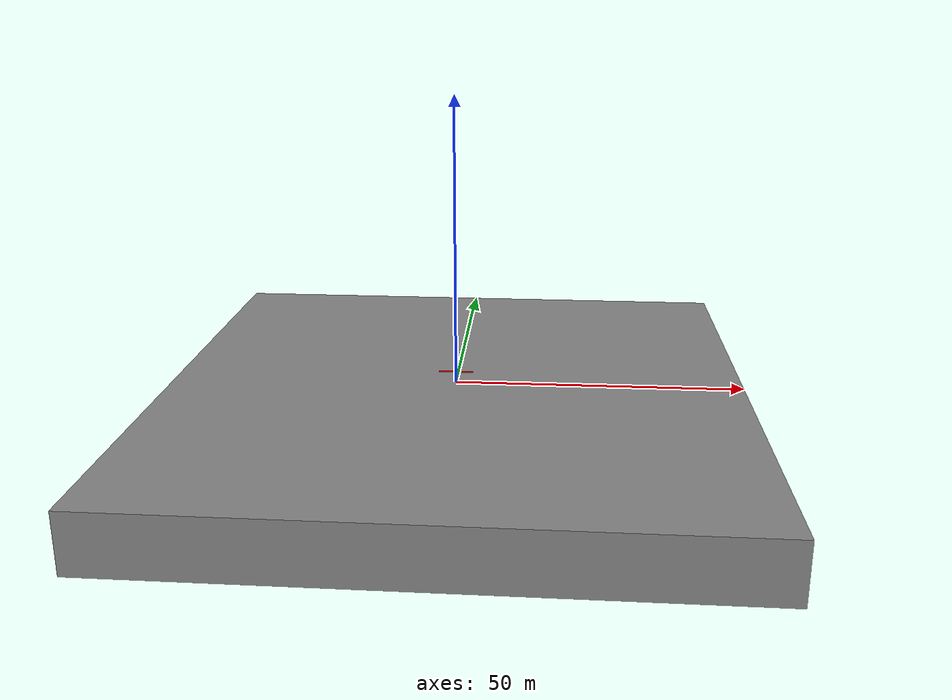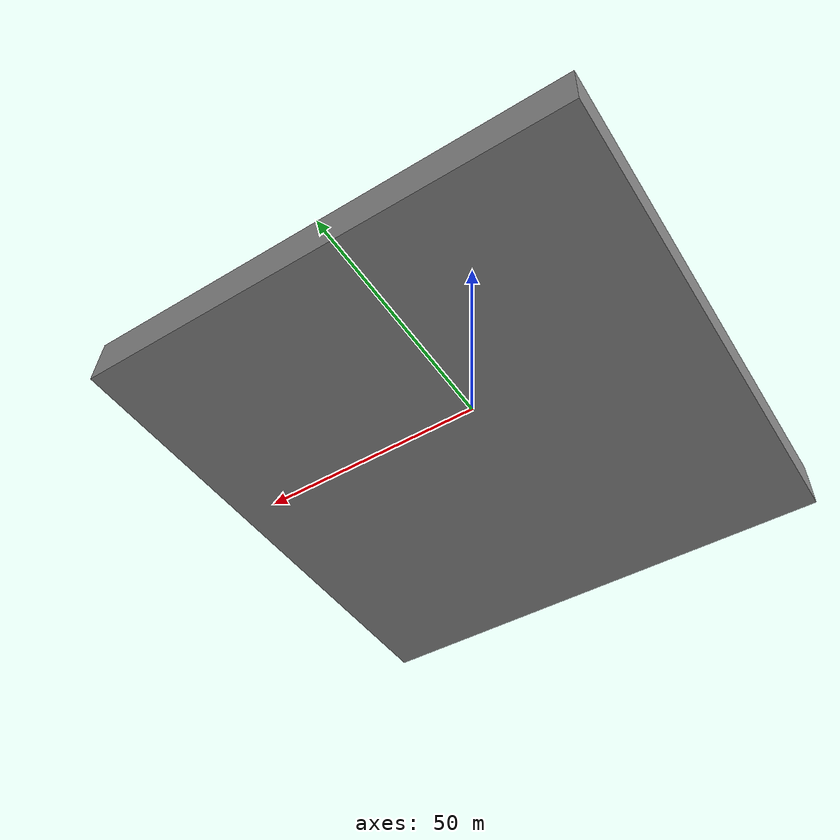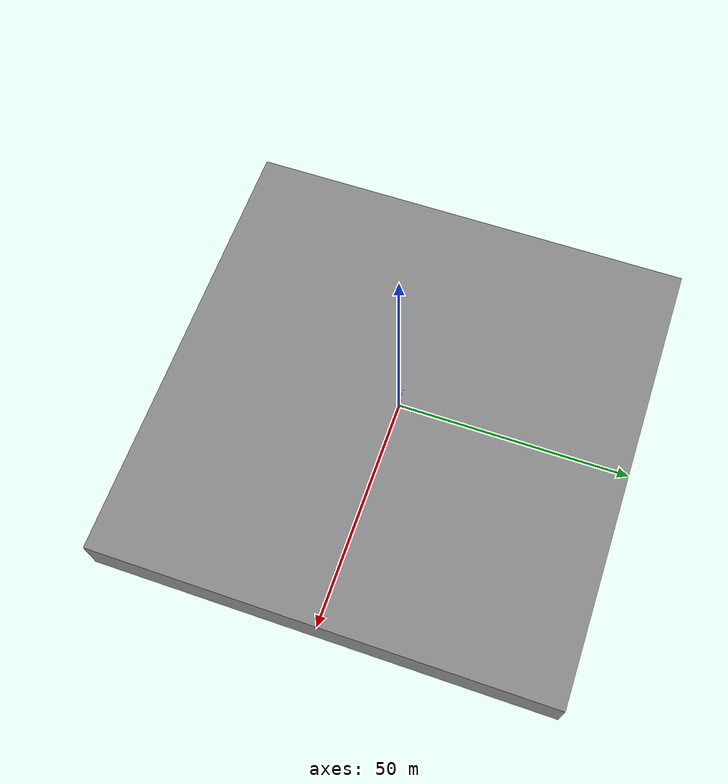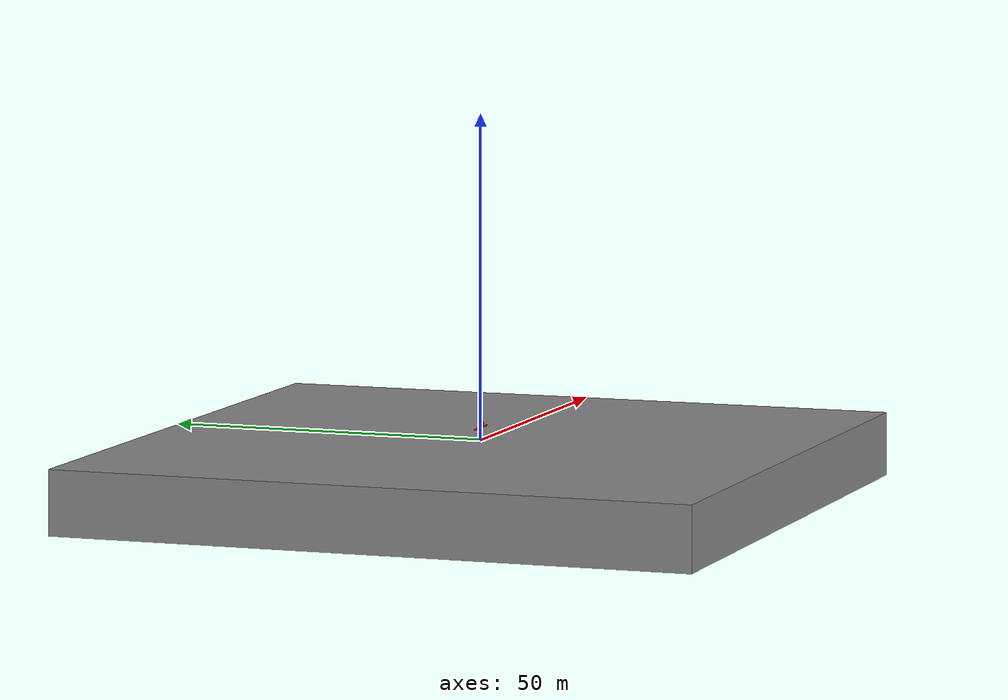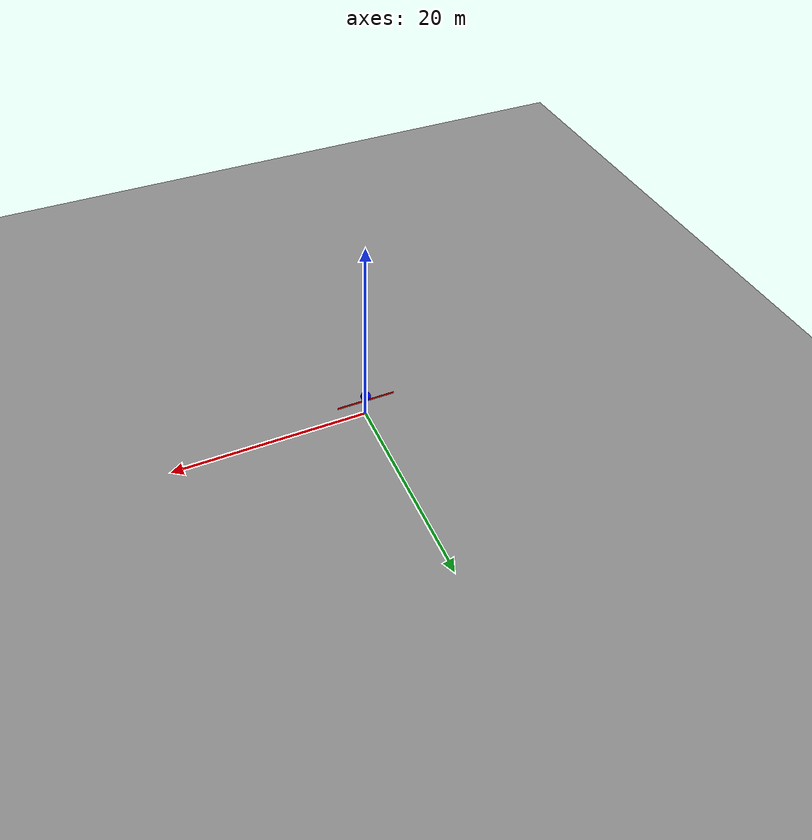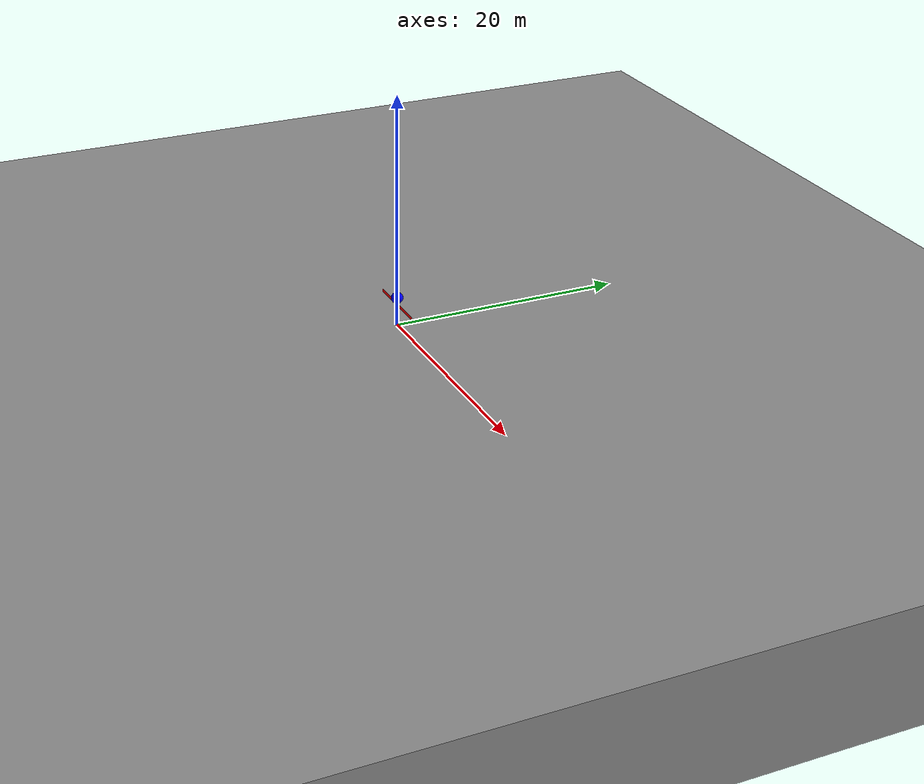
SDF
<?xml version='1.0'?>
<!--
This model describes a ball and beam mechanism
-->

<sdf version='1.6'>
  <model name='BallBeam2D'>
    <link name='ground'>
      <pose frame=''>0 0 -5 0 0 0</pose>
      <inertial>
        <pose frame=''>0 0 0 0 0 0</pose>
        <mass>0</mass>
        <inertia>
          <ixx>0</ixx>
          <ixy>0</ixy>
          <ixz>0</ixz>
          <iyy>0</iyy>
          <iyz>0</iyz>
          <izz>0</izz>
        </inertia>
      </inertial>
      <collision name='ground_collision'>
        <pose frame=''>0 0 0 0 0 0</pose>
        <geometry>
          <box>
            <size>100.0 100.0 10.0</size>
          </box>
        </geometry>
      </collision>
      <visual name='ground_visual'>
        <pose frame=''>0 0 0 0 0 0</pose>
        <geometry>
          <box>
            <size>100.0 100.0 10.0</size>
          </box>
        </geometry>
        <material>
          <diffuse>0.54 0.54 0.54 0.9</diffuse>
        </material>
      </visual>
    </link>

    <link name='beam'>
      <inertial>
        <pose frame=''>0 0 1.89 0 0 0</pose>
        <mass>1</mass>
        <inertia>
          <ixx>1</ixx>
          <ixy>0</ixy>
          <ixz>0</ixz>
          <iyy>1</iyy>
          <iyz>0</iyz>
          <izz>1</izz>
        </inertia>
      </inertial>
      <visual name='beam_visual'>
        <pose frame=''>0 0 1.89 0 0 0</pose>
        <geometry>
          <box>
            <size>6 0 0.25</size>
          </box>
        </geometry>
        <material>
          <diffuse>1 0 0 1</diffuse>
        </material>
      </visual>
    </link>

    <link name='base'>
       <inertial>
        <pose frame=''>0 0 0 0 0 0</pose>
        <mass>10</mass>
        <inertia>
          <ixx>1</ixx>
          <ixy>0</ixy>
          <ixz>0</ixz>
          <iyy>1</iyy>
          <iyz>0</iyz>
          <izz>1</izz>
        </inertia>
      </inertial>
      <visual name='base_visual'>
        <pose frame=''>0 0.0 0.94 0 0 0</pose>
        <geometry>
          <cylinder>
            <radius>0.125</radius>
            <length>1.89</length>
          </cylinder>
        </geometry>
        <material>
          <diffuse>0 1 0 1</diffuse>
        </material>
      </visual>
    </link>

    <link name='ball'>
      <inertial>
        <pose frame=''>0 0 2.5 0 0 0</pose>
        <mass>0.1</mass>
        <inertia>
          <ixx>1</ixx>
          <ixy>0</ixy>
          <ixz>0</ixz>
          <iyy>1</iyy>
          <iyz>0</iyz>
          <izz>1</izz>
        </inertia>
      </inertial>
      <visual name='ball_visual'>
        <pose frame=''>0 0.0 2.5 0 0 0</pose>
        <geometry>
          <sphere>
            <radius>0.5</radius>
          </sphere>
        </geometry>
        <material>
          <diffuse>0 0 1 1</diffuse>
        </material>
      </visual>
    </link>

    <joint name="base_to_ground" type="fixed">
      <parent>ground</parent>
      <child>base</child>
    </joint>

    <joint name="base_to_beam" type="revolute">
      <parent>base</parent>
      <child>beam</child>
      <pose>0 0 1.89 0 0 0</pose>
      <axis>
        <xyz>0 -1 0</xyz>
        <limit>
          <effort>50.0</effort>
        </limit>
        <dynamics>
          <damping>0</damping>
          <friction>0</friction>
          <spring_reference>0</spring_reference>
          <spring_stiffness>0</spring_stiffness>
        </dynamics>
        <use_parent_model_frame>1</use_parent_model_frame>
      </axis>
    </joint>

    <joint name="beam_to_ball" type="prismatic">
      <parent>beam</parent>
      <child>ball</child>
      <axis>
        <xyz>1 0 0</xyz>
        <limit>
          <effort>0.0</effort>
          <upper>3.0</upper>
          <lower>-3.0</lower>
        </limit>
        <dynamics>
          <damping>0.2</damping>
          <friction>0</friction>
          <spring_reference>0</spring_reference>
          <spring_stiffness>0</spring_stiffness>
        </dynamics>
        <use_parent_model_frame>1</use_parent_model_frame>
      </axis>
    </joint>

  </model>
</sdf>
